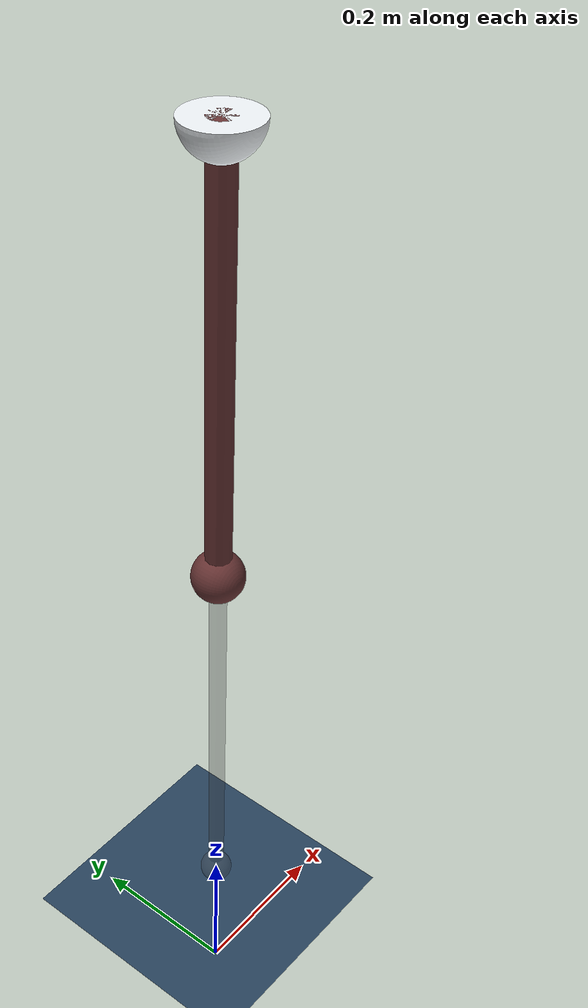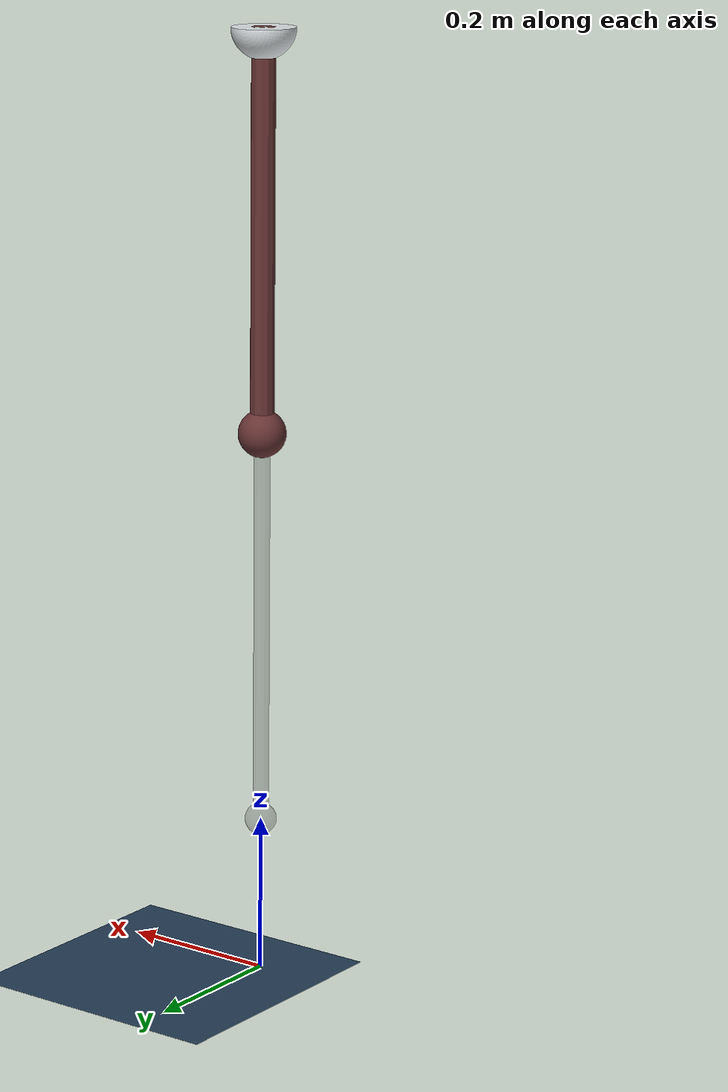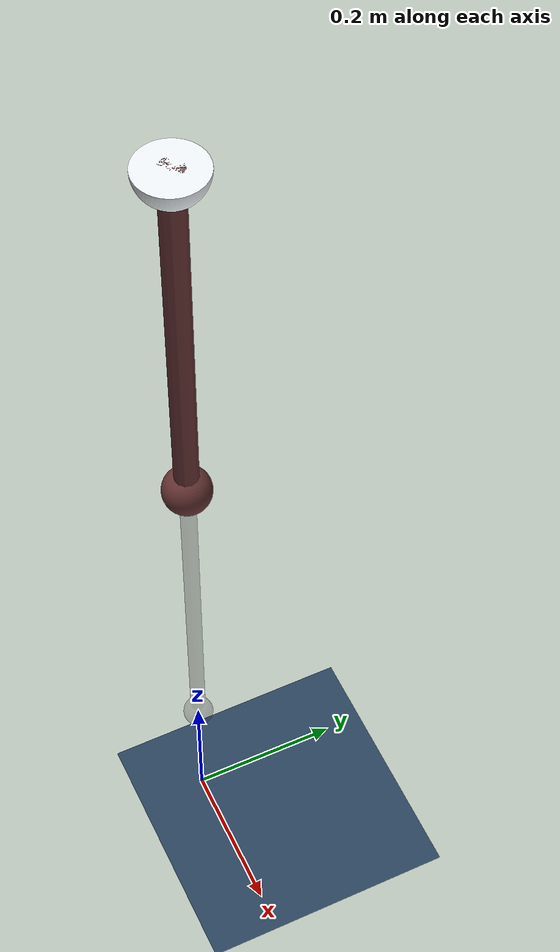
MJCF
<mujoco model="twoLink scene">
  <include file="../mjcf/twolink_robot.xml"/>

  <option timestep="0.001" gravity="0 0 -9.80665"/>
  <compiler angle="radian"/>
  <statistic center="1 -0.8 1.1" extent=".3"/>

  <visual>
    <headlight diffuse="0.6 0.6 0.6" ambient="0.1 0.1 0.1" specular="0.2 0.2 0.2"/>
    <rgba haze="0.15 0.25 0.35 1"/>
    <global azimuth="120" elevation="-80"/>
  </visual>

  <asset>
    <texture type="skybox" builtin="gradient" rgb1="0.3 0.5 0.7" rgb2="0 0 0" width="512" height="3072"/>
    <texture type="2d" name="groundplane" builtin="checker" mark="edge" rgb1="0.2 0.3 0.4" rgb2="0.1 0.2 0.3" markrgb="0.8 0.8 0.8" width="300" height="300"/>
    <material name="groundplane" texture="groundplane" texuniform="true" texrepeat="5 5" reflectance="0.2"/>
  </asset>

  <worldbody>
    <light pos="0 0 1.5" dir="0 0 -1" directional="true"/>
    <geom name="floor" size="0 0 0.05" type="plane" material="groundplane"/>
  </worldbody>
</mujoco>

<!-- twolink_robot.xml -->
<mujoco model="twolink">

  <compiler angle="radian" meshdir="../assets/"/>

  <asset>
    <mesh name="torso" file="base.STL"/>
    <mesh name="link1" file="link1.STL"/>
    <mesh name="link2" file="link2.STL"/>
  </asset>

  <contact>
    <exclude body1="torso" body2="link1"/>
  </contact>

  <worldbody>
    <body name="torso" pos="0 0 1.2" euler="0 0 0">
      <geom type="mesh" rgba="0.89804 0.91765 0.92941 1" mesh="torso"/>
      <body name="link1">
        <inertial pos="0 0 -0.31061" mass="3.666" diaginertia="0.058335 0.058335 0.00063238"/>
        <joint name="joint1" type="hinge" pos="0 0 0" axis="1 0 0"/>
        <geom type="mesh" rgba="0.4 0.2 0.2 1" mesh="link1"/>
        <body name="link2" pos="0 0 -0.5">
          <inertial pos="0 0 -0.29396" mass="1.4977" diaginertia="0.025788 0.025788 0.00010385"/>
          <joint name="joint2" type="hinge" pos="0 0 0" axis="1 0 0"/>
          <geom type="mesh" rgba="0.3 0.3 0.3 0.3" mesh="link2"/>
          <site name="ee" pos="0.0 0 -0.5" euler="0 0 0" size="0.001"/>
        </body>
      </body>
    </body>
  </worldbody>

  <actuator>
    <position name="motor1" joint="joint1" dampratio="1" kp="600" />
    <position name="motor2" joint="joint2" dampratio="1" kp="600" />
  </actuator>

  <sensor>
    <framepos name="eePos" objtype="site" objname="ee"/>
    <framequat name="eeQuat" objtype="site" objname="ee"/>
    <framelinvel name="eeLinVel" objtype="site" objname="ee"/>
    <frameangvel name="eeAngVel" objtype="site" objname="ee"/>
    <velocimeter name="eeVel" site="ee"/>
    <gyro name="eeGyro" site="ee"/>
    <accelerometer name="eeAcc" site="ee"/>
    <force name="eeForce" site="ee"/>
    <torque name="eeTorque" site="ee"/>
  </sensor>

  <keyframe>
    <key name="home" qpos="0 0" ctrl="0 0"/>
    <key name="stand1" qpos="-0.7853 1.57079" ctrl="-0.7853 1.57079"/>
    <key name="stand2" qpos="0.7853 -1.57079" ctrl="0.7853 -1.57079"/>
    <key name="stand3" qpos="-0.7853 -1.57079" ctrl="-0.7853 -1.57079"/>
    <key name="stand4" qpos="0.7853 1.57079" ctrl="0.7853 1.57079"/>
  </keyframe>

</mujoco>
